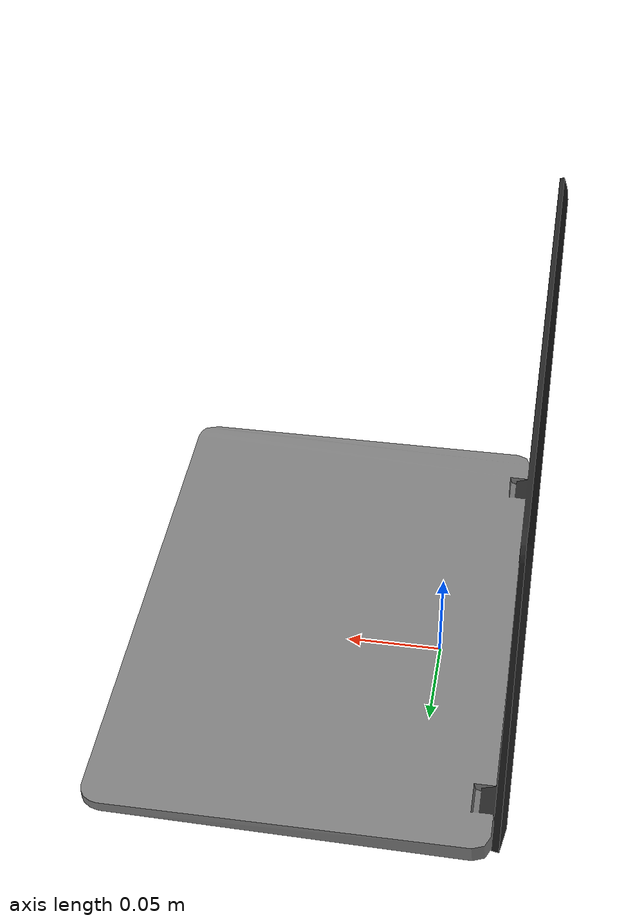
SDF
<?xml version='1.0' ?>
<sdf version='1.6'>
  <model name='laptop'>
    <static>false</static>
    <link name='link'>
      <collision name='collision'>
        <geometry>
          <mesh>
            <uri>model://volta_simulation/models/laptop/meshes/laptop.dae</uri>
          </mesh>
        </geometry>
        <surface>
          <friction>
            <ode>
              <mu>100</mu>
              <mu2>50</mu2>
            </ode>
          </friction>
        </surface>
      </collision>
      <visual name='visual'>
        <geometry>
          <mesh>
            <uri>model://volta_simulation/models/laptop/meshes/laptop.dae</uri>
          </mesh>
        </geometry>
      </visual>
      <inertial>
        <pose>-0.01 0 0.035 0 0 0</pose>
        <mass>2</mass>
        <inertia>
          <ixx>0.021 </ixx>
          <iyy>0.025 </iyy>
          <izz>0.03</izz>
          <ixy>0</ixy>
          <ixz>0.02</ixz>
          <iyz>0</iyz>
        </inertia>
      </inertial>
    </link>
  </model>
</sdf>
